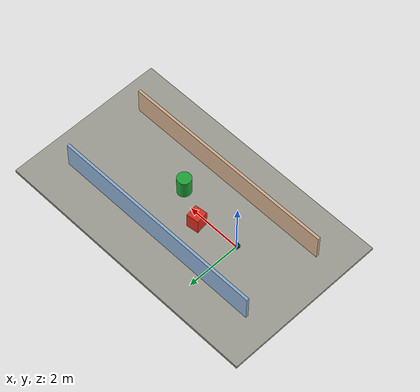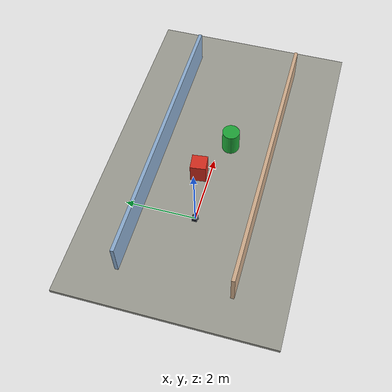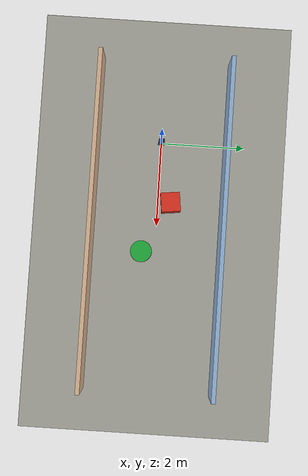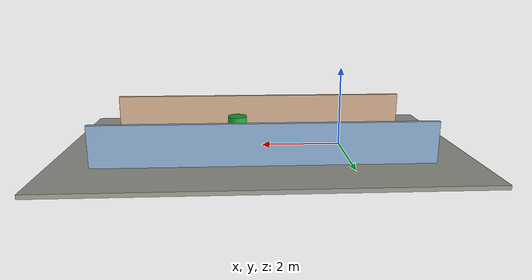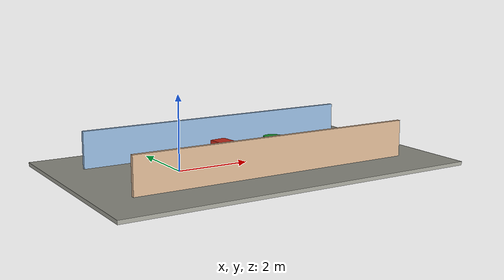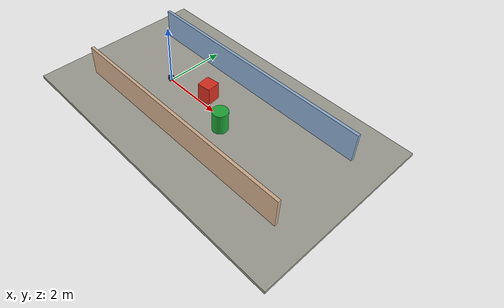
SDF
<?xml version="1.0"?>
<sdf version="1.8">
  <world name="livifuser_lab">
    <physics name="1ms" type="ignored">
      <max_step_size>0.001</max_step_size>
      <real_time_factor>1.0</real_time_factor>
    </physics>
    <plugin filename="ignition-gazebo-physics-system" name="gz::sim::systems::Physics"/>
    <plugin filename="ignition-gazebo-user-commands-system" name="gz::sim::systems::UserCommands"/>
    <plugin filename="ignition-gazebo-scene-broadcaster-system" name="gz::sim::systems::SceneBroadcaster"/>
    <plugin filename="ignition-gazebo-sensors-system" name="gz::sim::systems::Sensors">
      <render_engine>ogre</render_engine>
    </plugin>

    <scene>
      <ambient>0.55 0.55 0.55 1</ambient>
      <background>0.20 0.24 0.30 1</background>
      <shadows>true</shadows>
    </scene>
    <light type="directional" name="sun">
      <pose>0 0 8 0 0 0</pose>
      <diffuse>0.9 0.9 0.9 1</diffuse>
      <specular>0.2 0.2 0.2 1</specular>
      <direction>-0.4 0.2 -0.9</direction>
    </light>

    <model name="ground">
      <static>true</static>
      <link name="ground_link">
        <collision name="collision">
          <geometry><box><size>10 6 0.10</size></box></geometry>
          <pose>2 0 -0.05 0 0 0</pose>
        </collision>
        <visual name="visual">
          <geometry><box><size>10 6 0.10</size></box></geometry>
          <pose>2 0 -0.05 0 0 0</pose>
          <material><ambient>0.55 0.55 0.52 1</ambient><diffuse>0.62 0.62 0.58 1</diffuse></material>
        </visual>
      </link>
    </model>

    <model name="left_wall">
      <static>true</static><pose>2 1.55 0.5 0 0 0</pose>
      <link name="link"><collision name="collision"><geometry><box><size>8 0.10 1</size></box></geometry></collision>
      <visual name="visual"><geometry><box><size>8 0.10 1</size></box></geometry><material><ambient>0.55 0.68 0.82 1</ambient><diffuse>0.55 0.68 0.82 1</diffuse></material></visual></link>
    </model>
    <model name="right_wall">
      <static>true</static><pose>2 -1.55 0.5 0 0 0</pose>
      <link name="link"><collision name="collision"><geometry><box><size>8 0.10 1</size></box></geometry></collision>
      <visual name="visual"><geometry><box><size>8 0.10 1</size></box></geometry><material><ambient>0.82 0.68 0.55 1</ambient><diffuse>0.82 0.68 0.55 1</diffuse></material></visual></link>
    </model>
    <model name="obstacle_left">
      <static>true</static><pose>1.45 0.30 0.30 0 0 0.12</pose>
      <link name="link"><collision name="collision"><geometry><box><size>0.45 0.45 0.60</size></box></geometry></collision>
      <visual name="visual"><geometry><box><size>0.45 0.45 0.60</size></box></geometry><material><ambient>0.85 0.18 0.12 1</ambient><diffuse>0.85 0.18 0.12 1</diffuse></material></visual></link>
    </model>
    <model name="obstacle_right">
      <static>true</static><pose>2.65 -0.32 0.35 0 0 -0.10</pose>
      <link name="link"><collision name="collision"><geometry><cylinder><radius>0.25</radius><length>0.70</length></cylinder></geometry></collision>
      <visual name="visual"><geometry><cylinder><radius>0.25</radius><length>0.70</length></cylinder></geometry><material><ambient>0.12 0.65 0.22 1</ambient><diffuse>0.12 0.65 0.22 1</diffuse></material></visual></link>
    </model>

    <model name="livifuser_burger">
      <pose>0 0 0.002 0 0 0</pose>
      <link name="base_link">
        <inertial>
          <pose>-0.00429009175 0 0.0307338557 0 0 0</pose>
          <mass>0.94473504</mass>
          <inertia>
            <ixx>0.00717896283</ixx><ixy>-0.000012294101</ixy><ixz>0.000576740468</ixz>
            <iyy>0.00721804469</iyy><iyz>-0.0000050120904</iyz><izz>0.00413858036</izz>
          </inertia>
        </inertial>
        <collision name="body_collision">
          <pose>-0.032 0 0.080 0 0 0</pose>
          <geometry><box><size>0.140 0.140 0.143</size></box></geometry>
        </collision>
        <collision name="caster_back_collision">
          <pose>-0.081 0 0.005 -1.5707963268 0 0</pose>
          <geometry><box><size>0.030 0.009 0.020</size></box></geometry>
          <surface><friction><ode><mu>0.01</mu><mu2>0.01</mu2></ode></friction></surface>
        </collision>
        <visual name="body_visual">
          <pose>-0.032 0 0.080 0 0 0</pose>
          <geometry><box><size>0.140 0.140 0.143</size></box></geometry>
          <material><ambient>0.10 0.12 0.16 1</ambient><diffuse>0.10 0.12 0.16 1</diffuse></material>
        </visual>
        <sensor name="rpi_camera_v3" type="camera">
          <pose>0.0723955522 0.0048472604 0.088102685 0.0516921310 0.0054365470 -0.0292993679</pose>
          <topic>camera</topic><update_rate>30</update_rate><always_on>true</always_on><visualize>false</visualize>
          <camera>
            <horizontal_fov>0.911759</horizontal_fov>
            <image><width>320</width><height>240</height><format>R8G8B8</format></image>
            <clip><near>0.05</near><far>20.0</far></clip>
            <lens><intrinsics><fx>316.21156</fx><fy>315.64970</fy><cx>223.13834</cx><cy>107.39364</cy><s>0</s></intrinsics></lens>
            <distortion><k1>0.012344</k1><k2>0.038138</k2><k3>0.0</k3><p1>-0.016819</p1><p2>0.004823</p2><center>0.6973073125 0.4474735</center></distortion>
          </camera>
        </sensor>
      </link>

      <link name="left_wheel">
        <!-- The wheel geometry follows the Burger dimensions.  The joint axis
             below is sign-adjusted for Fortress DiffDrive so a positive
             command produces positive body-X travel. -->
        <pose relative_to="left_wheel_joint">0 0 0 0 0 0</pose>
        <inertial><mass>0.02849894</mass><inertia><ixx>0.00001117558</ixx><iyy>0.000011192413</iyy><izz>0.000020712558</izz></inertia></inertial>
        <collision name="collision"><geometry><cylinder><radius>0.033</radius><length>0.018</length></cylinder></geometry><surface><friction><ode><mu>1.0</mu><mu2>1.0</mu2></ode></friction></surface></collision>
        <visual name="visual"><geometry><cylinder><radius>0.033</radius><length>0.018</length></cylinder></geometry><material><ambient>0.03 0.03 0.03 1</ambient><diffuse>0.03 0.03 0.03 1</diffuse></material></visual>
      </link>
      <link name="right_wheel">
        <pose relative_to="right_wheel_joint">0 0 0 0 0 0</pose>
        <inertial><mass>0.02849894</mass><inertia><ixx>0.00001117558</ixx><iyy>0.000011192413</iyy><izz>0.000020712558</izz></inertia></inertial>
        <collision name="collision"><geometry><cylinder><radius>0.033</radius><length>0.018</length></cylinder></geometry><surface><friction><ode><mu>1.0</mu><mu2>1.0</mu2></ode></friction></surface></collision>
        <visual name="visual"><geometry><cylinder><radius>0.033</radius><length>0.018</length></cylinder></geometry><material><ambient>0.03 0.03 0.03 1</ambient><diffuse>0.03 0.03 0.03 1</diffuse></material></visual>
      </link>
      <joint name="left_wheel_joint" type="revolute"><pose relative_to="base_link">0 0.080 0.033 1.5707963268 0 0</pose><parent>base_link</parent><child>left_wheel</child><axis><xyz>0 0 -1</xyz></axis></joint>
      <joint name="right_wheel_joint" type="revolute"><pose relative_to="base_link">0 -0.080 0.033 1.5707963268 0 0</pose><parent>base_link</parent><child>right_wheel</child><axis><xyz>0 0 -1</xyz></axis></joint>

      <plugin filename="ignition-gazebo-diff-drive-system" name="gz::sim::systems::DiffDrive">
        <left_joint>left_wheel_joint</left_joint><right_joint>right_wheel_joint</right_joint>
        <wheel_separation>0.160</wheel_separation><wheel_radius>0.033</wheel_radius>
        <odom_publish_frequency>20</odom_publish_frequency>
        <max_linear_acceleration>0.08</max_linear_acceleration><min_linear_acceleration>-0.08</min_linear_acceleration>
        <max_angular_acceleration>0.40</max_angular_acceleration><min_angular_acceleration>-0.40</min_angular_acceleration>
        <max_linear_velocity>0.22</max_linear_velocity><min_linear_velocity>-0.22</min_linear_velocity>
        <max_angular_velocity>2.84</max_angular_velocity><min_angular_velocity>-2.84</min_angular_velocity>
      </plugin>
    </model>
  </world>
</sdf>
